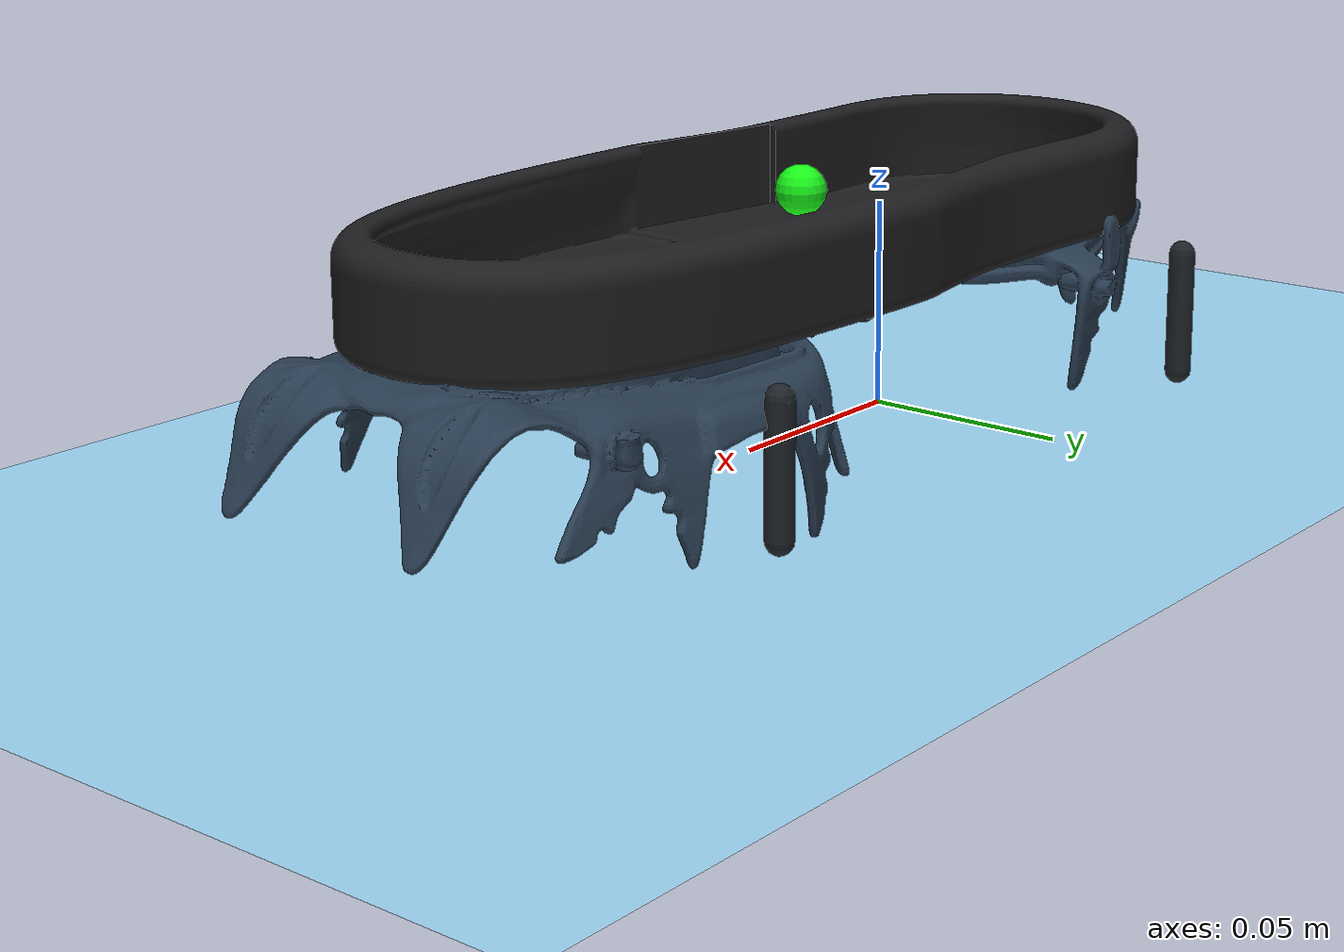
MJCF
<mujoco model="hackathon_everest_crampon_probe">
  <compiler angle="radian" meshdir="../assets/crampon" autolimits="true" />
  <option timestep="0.00025" integrator="implicitfast" gravity="0 0 -9.81" iterations="80" />
  <default>
    <joint damping="2" armature="0.0001" />
    <geom condim="4" friction="0.04 0.004 0.0001" solref="0.01 1" solimp="0.99 0.99 0.001" />
    <site rgba="1 0 0 0.35" />
    <default class="probe">
      <joint type="slide" axis="0 0 1" range="0 0.020" springref="0" stiffness="8000" damping="120" />
      <geom type="capsule" size="0.003" density="7800" condim="1" rgba="0.12 0.14 0.16 1" />
      <site type="sphere" size="0.004" rgba="0 0 0 0" />
    </default>
  </default>
  <asset>
    <material name="crampon_metal" rgba="0.16 0.24 0.32 1" metallic="0.8" roughness="0.28" />
    <material name="mount_plate" rgba="0.12 0.12 0.13 1" metallic="0.25" roughness="0.5" />
    <material name="ice" rgba="0.62 0.84 0.96 0.78" roughness="0.12" />
    <mesh name="crampon_frame_mesh" file="crampon_frame_fitted.stl" />
    <mesh name="mount_plate_mesh" file="mount_plate_fitted.stl" />
  </asset>
  <worldbody>
    <light pos="0 -1 1.2" dir="0 1 -1" diffuse="0.9 0.9 0.9" />
    <camera name="probe_camera" pos="0.42 -0.52 0.30" xyaxes="0.78 0.62 0 -0.25 0.31 0.92" />
    <geom name="ice_plane" type="plane" size="1 1 0.02" material="ice" friction="0.035 0.003 0.0001" condim="1" />
    <body name="probe_carriage" pos="0 0 0.07870640798">
      <inertial pos="0 0 0" mass="2.0" diaginertia="0.01 0.01 0.01" />
      <joint name="carriage_x" type="slide" axis="1 0 0" range="-0.120 0.120" damping="8" />
      <joint name="carriage_z" type="slide" axis="0 0 1" range="-0.030 0.010" damping="400" />
      <geom name="crampon_frame_visual" type="mesh" mesh="crampon_frame_mesh" material="crampon_metal" contype="0" conaffinity="0" density="0" group="2" />
      <geom name="mount_plate_visual" type="mesh" mesh="mount_plate_mesh" material="mount_plate" contype="0" conaffinity="0" density="0" group="2" />
      <site name="crampon_imu" pos="0.0312280152 0.0002197697759 -0.02080976963" size="0.006" rgba="0.1 1 0.1 1" />
      <site name="radar_origin" pos="0.07982801646 0.0002197697759 -0.04672976956" size="0.007" rgba="0.8 0.1 1 1" />
      <body name="probe_0" pos="0.1014280245 0.0488197729 -0.04564976692" quat="1 0 0 0">
        <joint class="probe" name="probe_0_slide" />
        <geom class="probe" name="probe_0_geom" fromto="0 0 0 0 0 -0.02981664096" size="0.003240000104" />
        <site class="probe" name="probe_0_tip" pos="0 0 -0.02981664096" size="0.00405000013" />
      </body>
      <body name="probe_1" pos="0.1014280245 -0.04838023335 -0.04564976692" quat="1 0 0 0">
        <joint class="probe" name="probe_1_slide" />
        <geom class="probe" name="probe_1_geom" fromto="0 0 0 0 0 -0.02981664096" size="0.003240000104" />
        <site class="probe" name="probe_1_tip" pos="0 0 -0.02981664096" size="0.00405000013" />
      </body>
      <body name="probe_2" pos="-0.06057199091 0.0488197729 -0.04564976692" quat="1 0 0 0">
        <joint class="probe" name="probe_2_slide" />
        <geom class="probe" name="probe_2_geom" fromto="0 0 0 0 0 -0.02981664096" size="0.003240000104" />
        <site class="probe" name="probe_2_tip" pos="0 0 -0.02981664096" size="0.00405000013" />
      </body>
      <body name="probe_3" pos="-0.06057199091 -0.04838023335 -0.04564976692" quat="1 0 0 0">
        <joint class="probe" name="probe_3_slide" />
        <geom class="probe" name="probe_3_geom" fromto="0 0 0 0 0 -0.02981664096" size="0.003240000104" />
        <site class="probe" name="probe_3_tip" pos="0 0 -0.02981664096" size="0.00405000013" />
      </body>
    </body>
  </worldbody>
  <actuator>
    <motor name="carriage_load" joint="carriage_z" gear="1" ctrlrange="-1200 1200" forcerange="-1200 1200" />
  </actuator>
  <sensor>
    <touch name="spike_0_axial_force" site="probe_0_tip" />
    <touch name="spike_1_axial_force" site="probe_1_tip" />
    <touch name="spike_2_axial_force" site="probe_2_tip" />
    <touch name="spike_3_axial_force" site="probe_3_tip" />
    <jointpos name="spike_0_penetration" joint="probe_0_slide" />
    <jointpos name="spike_1_penetration" joint="probe_1_slide" />
    <jointpos name="spike_2_penetration" joint="probe_2_slide" />
    <jointpos name="spike_3_penetration" joint="probe_3_slide" />
    <accelerometer name="crampon_accelerometer" site="crampon_imu" />
    <gyro name="crampon_gyroscope" site="crampon_imu" />
    <user name="radar_frontend" dim="5" needstage="vel" />
  </sensor>
  <keyframe>
    <key name="touchdown" qpos="0 0 0 0 0 0" ctrl="0" />
  </keyframe>
</mujoco>
